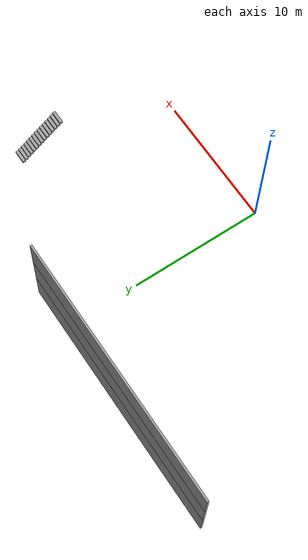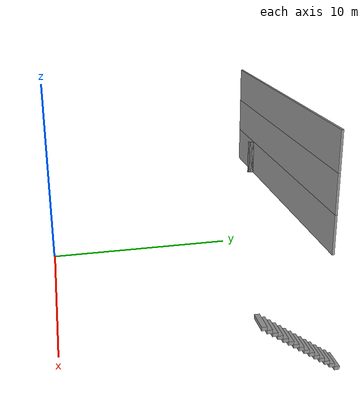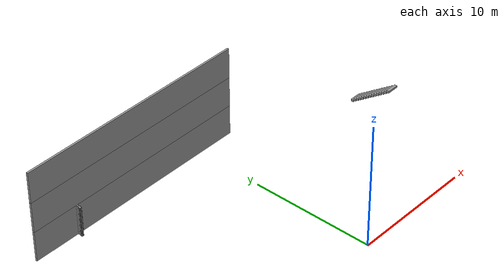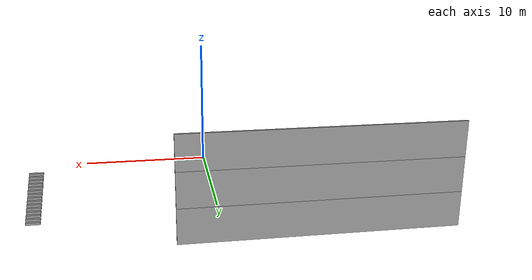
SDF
<sdf version="1.7">
 <model name="mapagazebo">
  <pose>-4.67869 9.01252 0 0 -0 0</pose>
  <link name="Stairs_0">
   <visual name="Stairs_0_Visual_0">
    <pose>17.5808 2.35966 0.083333 0 -0 0</pose>
    <geometry><box><size>1 0.233333 0.166667</size></box></geometry>
    <material>
     <script><uri>file://media/materials/scripts/gazebo.material</uri><name>Gazebo/Grey</name></script>
     <ambient>1 1 1 1</ambient>
    </material>
    <meta><layer>0</layer></meta>
   </visual>
   <collision name="Stairs_0_Collision_0">
    <geometry><box><size>1 0.233333 0.166667</size></box></geometry>
    <pose>17.5808 2.35966 0.083333 0 -0 0</pose>
   </collision>
   <visual name="Stairs_0_Visual_1">
    <pose>17.5808 2.12633 0.25 0 -0 0</pose>
    <geometry><box><size>1 0.233333 0.166667</size></box></geometry>
    <material>
     <script><uri>file://media/materials/scripts/gazebo.material</uri><name>Gazebo/Grey</name></script>
     <ambient>1 1 1 1</ambient>
    </material>
    <meta><layer>0</layer></meta>
   </visual>
   <collision name="Stairs_0_Collision_1">
    <geometry><box><size>1 0.233333 0.166667</size></box></geometry>
    <pose>17.5808 2.12633 0.25 0 -0 0</pose>
   </collision>
   <visual name="Stairs_0_Visual_2">
    <pose>17.5808 1.893 0.416667 0 -0 0</pose>
    <geometry><box><size>1 0.233333 0.166667</size></box></geometry>
    <material>
     <script><uri>file://media/materials/scripts/gazebo.material</uri><name>Gazebo/Grey</name></script>
     <ambient>1 1 1 1</ambient>
    </material>
    <meta><layer>0</layer></meta>
   </visual>
   <collision name="Stairs_0_Collision_2">
    <geometry><box><size>1 0.233333 0.166667</size></box></geometry>
    <pose>17.5808 1.893 0.416667 0 -0 0</pose>
   </collision>
   <visual name="Stairs_0_Visual_3">
    <pose>17.5808 1.65966 0.583333 0 -0 0</pose>
    <geometry><box><size>1 0.233333 0.166667</size></box></geometry>
    <material>
     <script><uri>file://media/materials/scripts/gazebo.material</uri><name>Gazebo/Grey</name></script>
     <ambient>1 1 1 1</ambient>
    </material>
    <meta><layer>0</layer></meta>
   </visual>
   <collision name="Stairs_0_Collision_3">
    <geometry><box><size>1 0.233333 0.166667</size></box></geometry>
    <pose>17.5808 1.65966 0.583333 0 -0 0</pose>
   </collision>
   <visual name="Stairs_0_Visual_4">
    <pose>17.5808 1.42633 0.75 0 -0 0</pose>
    <geometry><box><size>1 0.233333 0.166667</size></box></geometry>
    <material>
     <script><uri>file://media/materials/scripts/gazebo.material</uri><name>Gazebo/Grey</name></script>
     <ambient>1 1 1 1</ambient>
    </material>
    <meta><layer>0</layer></meta>
   </visual>
   <collision name="Stairs_0_Collision_4">
    <geometry><box><size>1 0.233333 0.166667</size></box></geometry>
    <pose>17.5808 1.42633 0.75 0 -0 0</pose>
   </collision>
   <visual name="Stairs_0_Visual_5">
    <pose>17.5808 1.193 0.916667 0 -0 0</pose>
    <geometry><box><size>1 0.233333 0.166667</size></box></geometry>
    <material>
     <script><uri>file://media/materials/scripts/gazebo.material</uri><name>Gazebo/Grey</name></script>
     <ambient>1 1 1 1</ambient>
    </material>
    <meta><layer>0</layer></meta>
   </visual>
   <collision name="Stairs_0_Collision_5">
    <geometry><box><size>1 0.233333 0.166667</size></box></geometry>
    <pose>17.5808 1.193 0.916667 0 -0 0</pose>
   </collision>
   <visual name="Stairs_0_Visual_6">
    <pose>17.5808 0.959664 1.08333 0 -0 0</pose>
    <geometry><box><size>1 0.233333 0.166667</size></box></geometry>
    <material>
     <script><uri>file://media/materials/scripts/gazebo.material</uri><name>Gazebo/Grey</name></script>
     <ambient>1 1 1 1</ambient>
    </material>
    <meta><layer>0</layer></meta>
   </visual>
   <collision name="Stairs_0_Collision_6">
    <geometry><box><size>1 0.233333 0.166667</size></box></geometry>
    <pose>17.5808 0.959664 1.08333 0 -0 0</pose>
   </collision>
   <visual name="Stairs_0_Visual_7">
    <pose>17.5808 0.726331 1.25 0 -0 0</pose>
    <geometry><box><size>1 0.233333 0.166667</size></box></geometry>
    <material>
     <script><uri>file://media/materials/scripts/gazebo.material</uri><name>Gazebo/Grey</name></script>
     <ambient>1 1 1 1</ambient>
    </material>
    <meta><layer>0</layer></meta>
   </visual>
   <collision name="Stairs_0_Collision_7">
    <geometry><box><size>1 0.233333 0.166667</size></box></geometry>
    <pose>17.5808 0.726331 1.25 0 -0 0</pose>
   </collision>
   <visual name="Stairs_0_Visual_8">
    <pose>17.5808 0.492997 1.41667 0 -0 0</pose>
    <geometry><box><size>1 0.233333 0.166667</size></box></geometry>
    <material>
     <script><uri>file://media/materials/scripts/gazebo.material</uri><name>Gazebo/Grey</name></script>
     <ambient>1 1 1 1</ambient>
    </material>
    <meta><layer>0</layer></meta>
   </visual>
   <collision name="Stairs_0_Collision_8">
    <geometry><box><size>1 0.233333 0.166667</size></box></geometry>
    <pose>17.5808 0.492997 1.41667 0 -0 0</pose>
   </collision>
   <visual name="Stairs_0_Visual_9">
    <pose>17.5808 0.259665 1.58333 0 -0 0</pose>
    <geometry><box><size>1 0.233333 0.166667</size></box></geometry>
    <material>
     <script><uri>file://media/materials/scripts/gazebo.material</uri><name>Gazebo/Grey</name></script>
     <ambient>1 1 1 1</ambient>
    </material>
    <meta><layer>0</layer></meta>
   </visual>
   <collision name="Stairs_0_Collision_9">
    <geometry><box><size>1 0.233333 0.166667</size></box></geometry>
    <pose>17.5808 0.259665 1.58333 0 -0 0</pose>
   </collision>
   <visual name="Stairs_0_Visual_10">
    <pose>17.5808 0.026331 1.75 0 -0 0</pose>
    <geometry><box><size>1 0.233333 0.166667</size></box></geometry>
    <material>
     <script><uri>file://media/materials/scripts/gazebo.material</uri><name>Gazebo/Grey</name></script>
     <ambient>1 1 1 1</ambient>
    </material>
    <meta><layer>0</layer></meta>
   </visual>
   <collision name="Stairs_0_Collision_10">
    <geometry><box><size>1 0.233333 0.166667</size></box></geometry>
    <pose>17.5808 0.026331 1.75 0 -0 0</pose>
   </collision>
   <visual name="Stairs_0_Visual_11">
    <pose>17.5808 -0.207003 1.91667 0 -0 0</pose>
    <geometry><box><size>1 0.233333 0.166667</size></box></geometry>
    <material>
     <script><uri>file://media/materials/scripts/gazebo.material</uri><name>Gazebo/Grey</name></script>
     <ambient>1 1 1 1</ambient>
    </material>
    <meta><layer>0</layer></meta>
   </visual>
   <collision name="Stairs_0_Collision_11">
    <geometry><box><size>1 0.233333 0.166667</size></box></geometry>
    <pose>17.5808 -0.207003 1.91667 0 -0 0</pose>
   </collision>
   <visual name="Stairs_0_Visual_12">
    <pose>17.5808 -0.440336 2.08333 0 -0 0</pose>
    <geometry><box><size>1 0.233333 0.166667</size></box></geometry>
    <material>
     <script><uri>file://media/materials/scripts/gazebo.material</uri><name>Gazebo/Grey</name></script>
     <ambient>1 1 1 1</ambient>
    </material>
    <meta><layer>0</layer></meta>
   </visual>
   <collision name="Stairs_0_Collision_12">
    <geometry><box><size>1 0.233333 0.166667</size></box></geometry>
    <pose>17.5808 -0.440336 2.08333 0 -0 0</pose>
   </collision>
   <visual name="Stairs_0_Visual_13">
    <pose>17.5808 -0.673669 2.25 0 -0 0</pose>
    <geometry><box><size>1 0.233333 0.166667</size></box></geometry>
    <material>
     <script><uri>file://media/materials/scripts/gazebo.material</uri><name>Gazebo/Grey</name></script>
     <ambient>1 1 1 1</ambient>
    </material>
    <meta><layer>0</layer></meta>
   </visual>
   <collision name="Stairs_0_Collision_13">
    <geometry><box><size>1 0.233333 0.166667</size></box></geometry>
    <pose>17.5808 -0.673669 2.25 0 -0 0</pose>
   </collision>
   <visual name="Stairs_0_Visual_14">
    <pose>17.5808 -0.907002 2.41667 0 -0 0</pose>
    <geometry><box><size>1 0.233333 0.166667</size></box></geometry>
    <material>
     <script><uri>file://media/materials/scripts/gazebo.material</uri><name>Gazebo/Grey</name></script>
     <ambient>1 1 1 1</ambient>
    </material>
    <meta><layer>0</layer></meta>
   </visual>
   <collision name="Stairs_0_Collision_14">
    <geometry><box><size>1 0.233333 0.166667</size></box></geometry>
    <pose>17.5808 -0.907002 2.41667 0 -0 0</pose>
   </collision>
  </link>
  <link name="Wall_1117">
   <collision name="Wall_1117_Collision">
    <geometry><box><size>19.25 0.15 2.5</size></box></geometry>
    <pose>0 0 1.25 0 -0 0</pose>
   </collision>
   <visual name="Wall_1117_Visual">
    <pose>0 0 1.25 0 -0 0</pose>
    <geometry><box><size>19.25 0.15 2.5</size></box></geometry>
    <material>
     <script><uri>file://media/materials/scripts/gazebo.material</uri><name>Gazebo/Grey</name></script>
     <ambient>1 1 1 1</ambient>
    </material>
    <meta><layer>1</layer></meta>
   </visual>
   <pose>-1.67267 6.70294 2.5 0 -0 0</pose>
  </link>
  <link name="Wall_1741">
   <collision name="Wall_1741_Collision">
    <geometry><box><size>19.25 0.15 2.5</size></box></geometry>
    <pose>0 0 1.25 0 -0 0</pose>
   </collision>
   <visual name="Wall_1741_Visual">
    <pose>0 0 1.25 0 -0 0</pose>
    <geometry><box><size>19.25 0.15 2.5</size></box></geometry>
    <material>
     <script><uri>file://media/materials/scripts/gazebo.material</uri><name>Gazebo/Grey</name></script>
     <ambient>1 1 1 1</ambient>
    </material>
    <meta><layer>2</layer></meta>
   </visual>
   <pose>-1.67267 6.70294 5 0 -0 0</pose>
  </link>
  <link name="Wall_2250">
   <collision name="Wall_2250_Collision">
    <geometry><box><size>0.15 0.15 2.5</size></box></geometry>
    <pose>0 0 1.25 0 -0 0</pose>
   </collision>
   <visual name="Wall_2250_Visual">
    <pose>0 0 1.25 0 -0 0</pose>
    <geometry><box><size>0.15 0.15 2.5</size></box></geometry>
    <material>
     <script><uri>file://media/materials/scripts/gazebo.material</uri><name>Gazebo/Grey</name></script>
     <ambient>1 1 1 1</ambient>
    </material>
    <meta><layer>0</layer></meta>
   </visual>
   <pose>-7.40649 6.59048 0 0 -0 0</pose>
  </link>
  <link name="Wall_2251">
   <collision name="Wall_2251_Collision">
    <geometry><box><size>0.25 0.15 2.5</size></box></geometry>
    <pose>0 0 1.25 0 -0 0</pose>
   </collision>
   <visual name="Wall_2251_Visual">
    <pose>0 0 1.25 0 -0 0</pose>
    <geometry><box><size>0.25 0.15 2.5</size></box></geometry>
    <material>
     <script><uri>file://media/materials/scripts/gazebo.material</uri><name>Gazebo/Grey</name></script>
     <ambient>1 1 1 1</ambient>
    </material>
    <meta><layer>0</layer></meta>
   </visual>
   <pose>-7.40649 6.54048 0 0 -0 -1.5708</pose>
  </link>
  <link name="Wall_2252">
   <collision name="Wall_2252_Collision">
    <geometry><box><size>0.25 0.15 2.5</size></box></geometry>
    <pose>0 0 1.25 0 -0 0</pose>
   </collision>
   <visual name="Wall_2252_Visual">
    <pose>0 0 1.25 0 -0 0</pose>
    <geometry><box><size>0.25 0.15 2.5</size></box></geometry>
    <material>
     <script><uri>file://media/materials/scripts/gazebo.material</uri><name>Gazebo/Grey</name></script>
     <ambient>1 1 1 1</ambient>
    </material>
    <meta><layer>0</layer></meta>
   </visual>
   <pose>-7.40649 6.44048 0 0 -0 -1.5708</pose>
  </link>
  <link name="Wall_2253">
   <collision name="Wall_2253_Collision">
    <geometry><box><size>0.25 0.15 2.5</size></box></geometry>
    <pose>0 0 1.25 0 -0 0</pose>
   </collision>
   <visual name="Wall_2253_Visual">
    <pose>0 0 1.25 0 -0 0</pose>
    <geometry><box><size>0.25 0.15 2.5</size></box></geometry>
    <material>
     <script><uri>file://media/materials/scripts/gazebo.material</uri><name>Gazebo/Grey</name></script>
     <ambient>1 1 1 1</ambient>
    </material>
    <meta><layer>0</layer></meta>
   </visual>
   <pose>-7.41943 6.34218 0 0 -0 -1.8326</pose>
  </link>
  <link name="Wall_2254">
   <collision name="Wall_2254_Collision">
    <geometry><box><size>0.15 0.15 2.5</size></box></geometry>
    <pose>0 0 1.25 0 -0 0</pose>
   </collision>
   <visual name="Wall_2254_Visual">
    <pose>0 0 1.25 0 -0 0</pose>
    <geometry><box><size>0.15 0.15 2.5</size></box></geometry>
    <material>
     <script><uri>file://media/materials/scripts/gazebo.material</uri><name>Gazebo/Grey</name></script>
     <ambient>1 1 1 1</ambient>
    </material>
    <meta><layer>0</layer></meta>
   </visual>
   <pose>-7.43237 6.29388 0 0 -0 0</pose>
  </link>
  <link name="Wall_422">
   <collision name="Wall_422_Collision">
    <geometry><box><size>19.25 0.15 2.5</size></box></geometry>
    <pose>0 0 1.25 0 -0 0</pose>
   </collision>
   <visual name="Wall_422_Visual">
    <pose>0 0 1.25 0 -0 0</pose>
    <geometry><box><size>19.25 0.15 2.5</size></box></geometry>
    <material>
     <script><uri>file://media/materials/scripts/gazebo.material</uri><name>Gazebo/Grey</name></script>
     <ambient>1 1 1 1</ambient>
    </material>
    <meta><layer>0</layer></meta>
   </visual>
   <pose>-1.67267 6.70294 0 0 -0 0</pose>
  </link>
  <static>1</static>
 </model>
</sdf>
